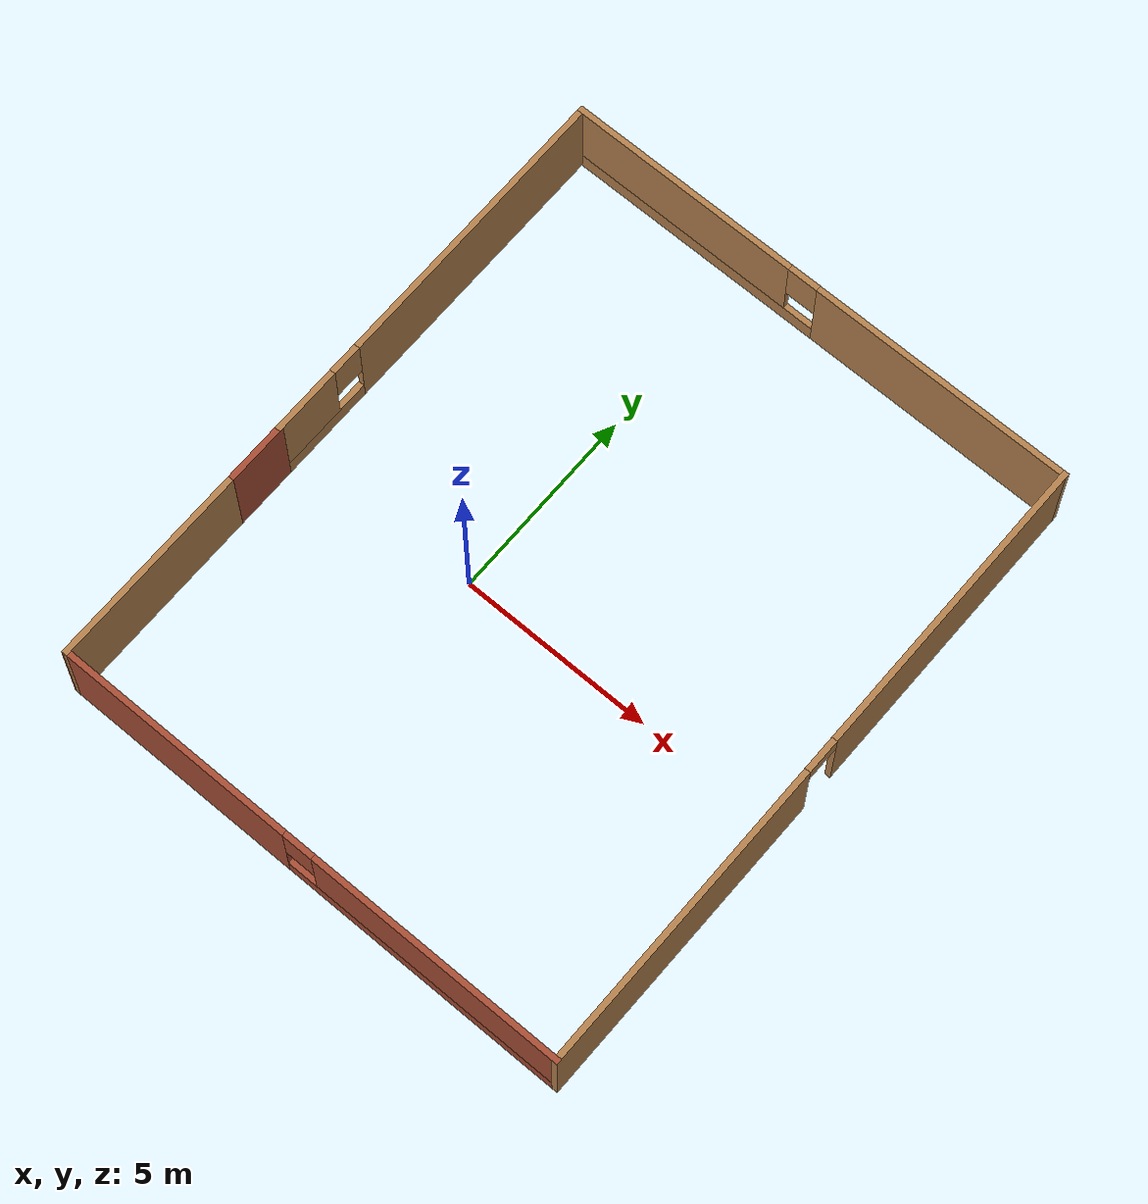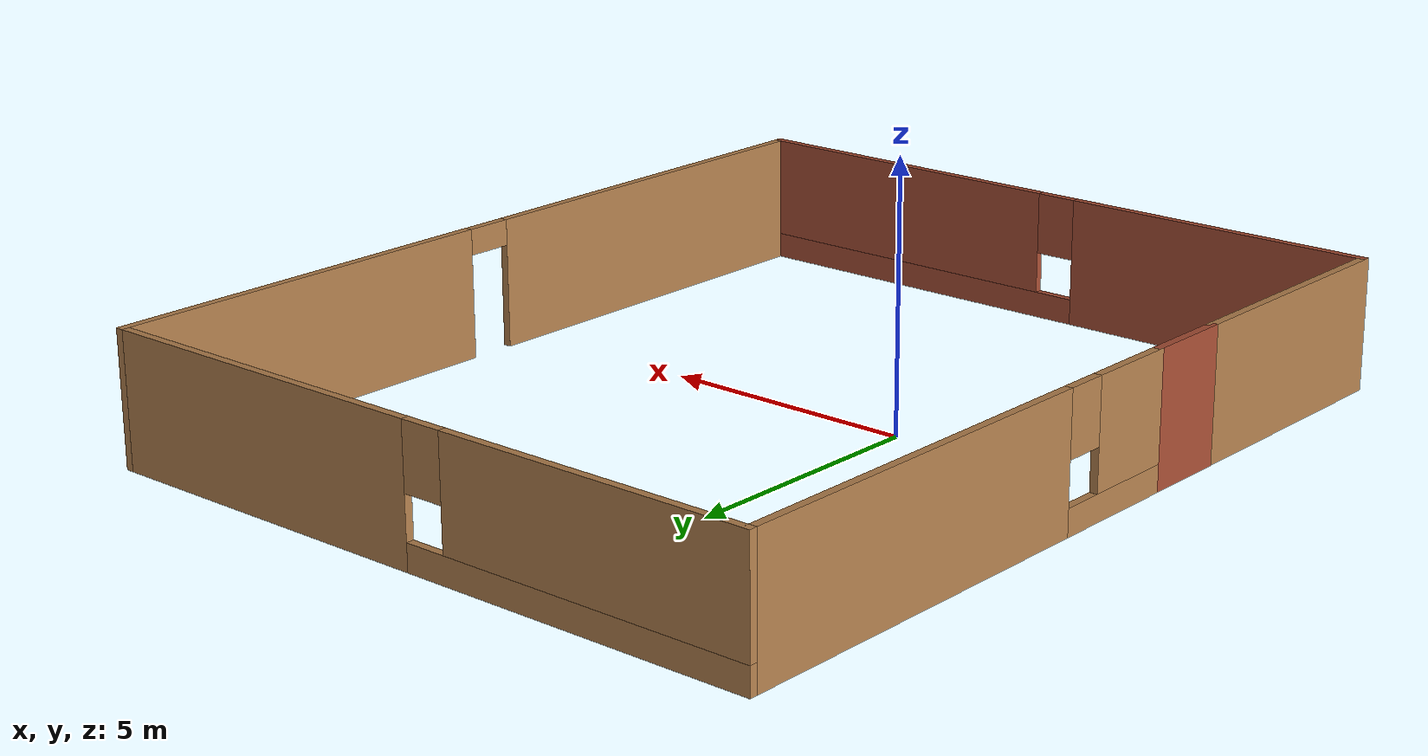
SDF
<?xml version='1.0'?>
<sdf version='1.6'>
  <model name='multiagent'>
    <pose frame=''>1.97 1.105 0 0 -0 0</pose>
    <link name='Wall_0'>
      <collision name='Wall_0_Collision'>
        <geometry>
          <box>
            <size>1.75 0.15 2.5</size>
          </box>
        </geometry>
        <pose frame=''>0 0 1.25 0 -0 0</pose>
      </collision>
      <visual name='Wall_0_Visual'>
        <pose frame=''>0 0 1.25 0 -0 0</pose>
        <geometry>
          <box>
            <size>1.75 0.15 2.5</size>
          </box>
        </geometry>
        <material>
          <script>
            <uri>file://media/materials/scripts/gazebo.material</uri>
            <name>Gazebo/Bricks</name>
          </script>
          <ambient>1 1 1 1</ambient>
        </material>
        <meta>
          <layer>0</layer>
        </meta>
      </visual>
      <pose frame=''>-6.8 -2.525 0 0 0 -1.5708</pose>
    </link>
    <link name='Wall_1'>
      <collision name='Wall_1_Collision'>
        <geometry>
          <box>
            <size>5.25 0.15 2.5</size>
          </box>
        </geometry>
        <pose frame=''>0 0 1.25 0 -0 0</pose>
      </collision>
      <visual name='Wall_1_Visual'>
        <pose frame=''>0 0 1.25 0 -0 0</pose>
        <geometry>
          <box>
            <size>5.25 0.15 2.5</size>
          </box>
        </geometry>
        <material>
          <script>
            <uri>file://media/materials/scripts/gazebo.material</uri>
            <name>Gazebo/Wood</name>
          </script>
          <ambient>1 1 1 1</ambient>
        </material>
        <meta>
          <layer>0</layer>
        </meta>
      </visual>
      <pose frame=''>-6.8 -5.875 0 0 0 -1.5708</pose>
    </link>
    <link name='Wall_2'>
      <pose frame=''>0 -8.425 0 0 -0 0</pose>
      <visual name='Wall_2_Visual_0'>
        <pose frame=''>-3.74605 0 1.25 0 -0 0</pose>
        <geometry>
          <box>
            <size>6.25791 0.15 2.5</size>
          </box>
        </geometry>
        <material>
          <script>
            <uri>file://media/materials/scripts/gazebo.material</uri>
            <name>Gazebo/Bricks</name>
          </script>
          <ambient>1 1 1 1</ambient>
        </material>
        <meta>
          <layer>0</layer>
        </meta>
      </visual>
      <collision name='Wall_2_Collision_0'>
        <geometry>
          <box>
            <size>6.25791 0.15 2.5</size>
          </box>
        </geometry>
        <pose frame=''>-3.74605 0 1.25 0 -0 0</pose>
      </collision>
      <visual name='Wall_2_Visual_1'>
        <pose frame=''>3.12895 0 0.25 0 -0 0</pose>
        <geometry>
          <box>
            <size>7.49209 0.15 0.5</size>
          </box>
        </geometry>
        <material>
          <script>
            <uri>file://media/materials/scripts/gazebo.material</uri>
            <name>Gazebo/Bricks</name>
          </script>
          <ambient>1 1 1 1</ambient>
        </material>
        <meta>
          <layer>0</layer>
        </meta>
      </visual>
      <collision name='Wall_2_Collision_1'>
        <geometry>
          <box>
            <size>7.49209 0.15 0.5</size>
          </box>
        </geometry>
        <pose frame=''>3.12895 0 0.25 0 -0 0</pose>
      </collision>
      <visual name='Wall_2_Visual_2'>
        <pose frame=''>3.52895 0 1.5 0 -0 0</pose>
        <geometry>
          <box>
            <size>6.6921 0.15 2</size>
          </box>
        </geometry>
        <material>
          <script>
            <uri>file://media/materials/scripts/gazebo.material</uri>
            <name>Gazebo/Bricks</name>
          </script>
          <ambient>1 1 1 1</ambient>
        </material>
        <meta>
          <layer>0</layer>
        </meta>
      </visual>
      <collision name='Wall_2_Collision_2'>
        <geometry>
          <box>
            <size>6.6921 0.15 2</size>
          </box>
        </geometry>
        <pose frame=''>3.52895 0 1.5 0 -0 0</pose>
      </collision>
      <visual name='Wall_2_Visual_3'>
        <pose frame=''>-0.217095 0 1.9 0 -0 0</pose>
        <geometry>
          <box>
            <size>0.8 0.15 1.2</size>
          </box>
        </geometry>
        <material>
          <script>
            <uri>file://media/materials/scripts/gazebo.material</uri>
            <name>Gazebo/Bricks</name>
          </script>
          <ambient>1 1 1 1</ambient>
        </material>
        <meta>
          <layer>0</layer>
        </meta>
      </visual>
      <collision name='Wall_2_Collision_3'>
        <geometry>
          <box>
            <size>0.8 0.15 1.2</size>
          </box>
        </geometry>
        <pose frame=''>-0.217095 0 1.9 0 -0 0</pose>
      </collision>
    </link>
    <link name='Wall_3'>
      <pose frame=''>6.8 0 0 0 -0 1.5708</pose>
      <visual name='Wall_3_Visual_0'>
        <pose frame=''>-4.41906 0 1.25 0 -0 0</pose>
        <geometry>
          <box>
            <size>8.16189 0.15 2.5</size>
          </box>
        </geometry>
        <material>
          <script>
            <uri>file://media/materials/scripts/gazebo.material</uri>
            <name>Gazebo/Wood</name>
          </script>
          <ambient>1 1 1 1</ambient>
        </material>
        <meta>
          <layer>0</layer>
        </meta>
      </visual>
      <collision name='Wall_3_Collision_0'>
        <geometry>
          <box>
            <size>8.16189 0.15 2.5</size>
          </box>
        </geometry>
        <pose frame=''>-4.41906 0 1.25 0 -0 0</pose>
      </collision>
      <visual name='Wall_3_Visual_1'>
        <pose frame=''>4.53095 0 1.25 0 -0 0</pose>
        <geometry>
          <box>
            <size>7.93811 0.15 2.5</size>
          </box>
        </geometry>
        <material>
          <script>
            <uri>file://media/materials/scripts/gazebo.material</uri>
            <name>Gazebo/Wood</name>
          </script>
          <ambient>1 1 1 1</ambient>
        </material>
        <meta>
          <layer>0</layer>
        </meta>
      </visual>
      <collision name='Wall_3_Collision_1'>
        <geometry>
          <box>
            <size>7.93811 0.15 2.5</size>
          </box>
        </geometry>
        <pose frame=''>4.53095 0 1.25 0 -0 0</pose>
      </collision>
      <visual name='Wall_3_Visual_2'>
        <pose frame=''>0.111889 0 2.25 0 -0 0</pose>
        <geometry>
          <box>
            <size>0.9 0.15 0.5</size>
          </box>
        </geometry>
        <material>
          <script>
            <uri>file://media/materials/scripts/gazebo.material</uri>
            <name>Gazebo/Wood</name>
          </script>
          <ambient>1 1 1 1</ambient>
        </material>
        <meta>
          <layer>0</layer>
        </meta>
      </visual>
      <collision name='Wall_3_Collision_2'>
        <geometry>
          <box>
            <size>0.9 0.15 0.5</size>
          </box>
        </geometry>
        <pose frame=''>0.111889 0 2.25 0 -0 0</pose>
      </collision>
    </link>
    <link name='Wall_4'>
      <pose frame=''>0 8.425 0 0 -0 3.14159</pose>
      <visual name='Wall_4_Visual_0'>
        <pose frame=''>-3.4359 0 1.25 0 -0 0</pose>
        <geometry>
          <box>
            <size>6.87819 0.15 2.5</size>
          </box>
        </geometry>
        <material>
          <script>
            <uri>file://media/materials/scripts/gazebo.material</uri>
            <name>Gazebo/Wood</name>
          </script>
          <ambient>1 1 1 1</ambient>
        </material>
        <meta>
          <layer>0</layer>
        </meta>
      </visual>
      <collision name='Wall_4_Collision_0'>
        <geometry>
          <box>
            <size>6.87819 0.15 2.5</size>
          </box>
        </geometry>
        <pose frame=''>-3.4359 0 1.25 0 -0 0</pose>
      </collision>
      <visual name='Wall_4_Visual_1'>
        <pose frame=''>3.4391 0 0.25 0 -0 0</pose>
        <geometry>
          <box>
            <size>6.87181 0.15 0.5</size>
          </box>
        </geometry>
        <material>
          <script>
            <uri>file://media/materials/scripts/gazebo.material</uri>
            <name>Gazebo/Wood</name>
          </script>
          <ambient>1 1 1 1</ambient>
        </material>
        <meta>
          <layer>0</layer>
        </meta>
      </visual>
      <collision name='Wall_4_Collision_1'>
        <geometry>
          <box>
            <size>6.87181 0.15 0.5</size>
          </box>
        </geometry>
        <pose frame=''>3.4391 0 0.25 0 -0 0</pose>
      </collision>
      <visual name='Wall_4_Visual_2'>
        <pose frame=''>3.8391 0 1.5 0 -0 0</pose>
        <geometry>
          <box>
            <size>6.07181 0.15 2</size>
          </box>
        </geometry>
        <material>
          <script>
            <uri>file://media/materials/scripts/gazebo.material</uri>
            <name>Gazebo/Wood</name>
          </script>
          <ambient>1 1 1 1</ambient>
        </material>
        <meta>
          <layer>0</layer>
        </meta>
      </visual>
      <collision name='Wall_4_Collision_2'>
        <geometry>
          <box>
            <size>6.07181 0.15 2</size>
          </box>
        </geometry>
        <pose frame=''>3.8391 0 1.5 0 -0 0</pose>
      </collision>
      <visual name='Wall_4_Visual_3'>
        <pose frame=''>0.403191 0 1.9 0 -0 0</pose>
        <geometry>
          <box>
            <size>0.8 0.15 1.2</size>
          </box>
        </geometry>
        <material>
          <script>
            <uri>file://media/materials/scripts/gazebo.material</uri>
            <name>Gazebo/Wood</name>
          </script>
          <ambient>1 1 1 1</ambient>
        </material>
        <meta>
          <layer>0</layer>
        </meta>
      </visual>
      <collision name='Wall_4_Collision_3'>
        <geometry>
          <box>
            <size>0.8 0.15 1.2</size>
          </box>
        </geometry>
        <pose frame=''>0.403191 0 1.9 0 -0 0</pose>
      </collision>
    </link>
    <link name='Wall_5'>
      <pose frame=''>-6.8 3.375 0 0 0 -1.5708</pose>
      <visual name='Wall_5_Visual_0'>
        <pose frame=''>-1.29378 0 1.25 0 -0 0</pose>
        <geometry>
          <box>
            <size>7.66244 0.15 2.5</size>
          </box>
        </geometry>
        <material>
          <script>
            <uri>file://media/materials/scripts/gazebo.material</uri>
            <name>Gazebo/Wood</name>
          </script>
          <ambient>1 1 1 1</ambient>
        </material>
        <meta>
          <layer>0</layer>
        </meta>
      </visual>
      <collision name='Wall_5_Collision_0'>
        <geometry>
          <box>
            <size>7.66244 0.15 2.5</size>
          </box>
        </geometry>
        <pose frame=''>-1.29378 0 1.25 0 -0 0</pose>
      </collision>
      <visual name='Wall_5_Visual_1'>
        <pose frame=''>3.83122 0 0.25 0 -0 0</pose>
        <geometry>
          <box>
            <size>2.58756 0.15 0.5</size>
          </box>
        </geometry>
        <material>
          <script>
            <uri>file://media/materials/scripts/gazebo.material</uri>
            <name>Gazebo/Wood</name>
          </script>
          <ambient>1 1 1 1</ambient>
        </material>
        <meta>
          <layer>0</layer>
        </meta>
      </visual>
      <collision name='Wall_5_Collision_1'>
        <geometry>
          <box>
            <size>2.58756 0.15 0.5</size>
          </box>
        </geometry>
        <pose frame=''>3.83122 0 0.25 0 -0 0</pose>
      </collision>
      <visual name='Wall_5_Visual_2'>
        <pose frame=''>4.23122 0 1.5 0 -0 0</pose>
        <geometry>
          <box>
            <size>1.78756 0.15 2</size>
          </box>
        </geometry>
        <material>
          <script>
            <uri>file://media/materials/scripts/gazebo.material</uri>
            <name>Gazebo/Wood</name>
          </script>
          <ambient>1 1 1 1</ambient>
        </material>
        <meta>
          <layer>0</layer>
        </meta>
      </visual>
      <collision name='Wall_5_Collision_2'>
        <geometry>
          <box>
            <size>1.78756 0.15 2</size>
          </box>
        </geometry>
        <pose frame=''>4.23122 0 1.5 0 -0 0</pose>
      </collision>
      <visual name='Wall_5_Visual_3'>
        <pose frame=''>2.93744 0 1.9 0 -0 0</pose>
        <geometry>
          <box>
            <size>0.8 0.15 1.2</size>
          </box>
        </geometry>
        <material>
          <script>
            <uri>file://media/materials/scripts/gazebo.material</uri>
            <name>Gazebo/Wood</name>
          </script>
          <ambient>1 1 1 1</ambient>
        </material>
        <meta>
          <layer>0</layer>
        </meta>
      </visual>
      <collision name='Wall_5_Collision_3'>
        <geometry>
          <box>
            <size>0.8 0.15 1.2</size>
          </box>
        </geometry>
        <pose frame=''>2.93744 0 1.9 0 -0 0</pose>
      </collision>
    </link>
    <static>1</static>
  </model>
</sdf>
